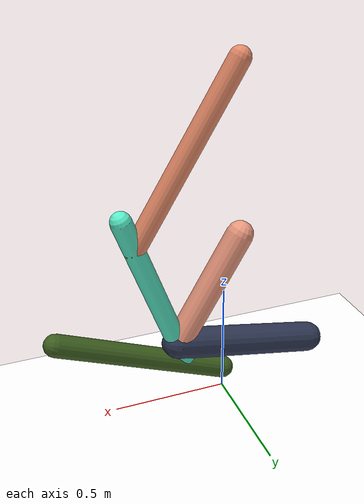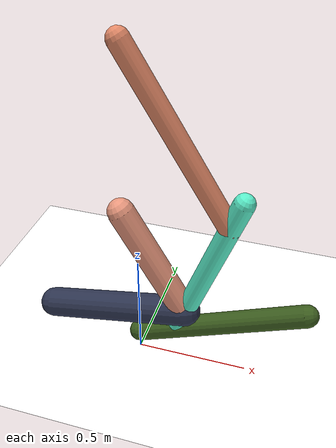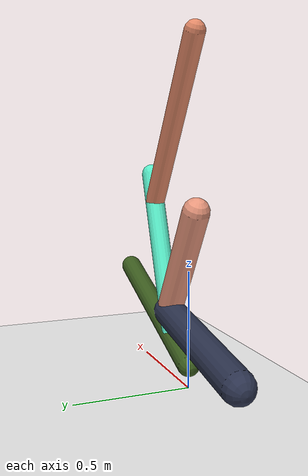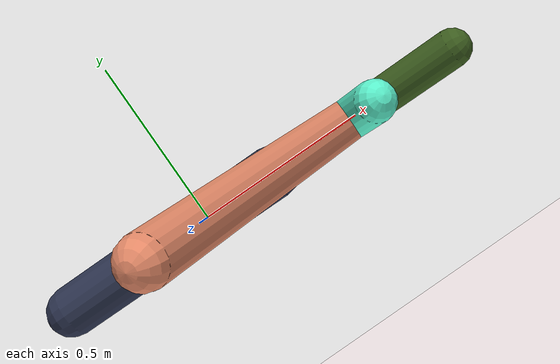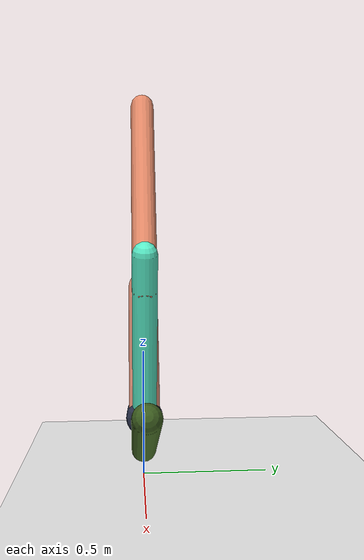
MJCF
<mujoco model="morphology">
  <option timestep="0.01"/>
  <default>
    <default class="/"/>
    <default class="0/"/>
    <default class="0/1/"/>
    <default class="0/1/2/"/>
    <default class="0/1/2/3/"/>
    <default class="0/1/4/"/>
  </default>
  <asset>
    <texture name="texplane" type="2d" builtin="checker" rgb1="0.10000000000000001 0.20000000000000001 0.29999999999999999" rgb2="0.20000000000000001 0.29999999999999999 0.40000000000000002" width="300" height="300"/>
    <material name="MatPlane" class="/" texture="texplane" texrepeat="20 20" specular="1" shininess="1" reflectance="0.5"/>
  </asset>
  <worldbody>
    <light name="//unnamed_light_0" class="/" directional="true" pos="0 0 1.5" dir="0 0 -1.3" cutoff="100" exponent="1" diffuse="1 1 1" specular="0.10000000000000001 0.10000000000000001 0.10000000000000001"/>
    <geom name="ground" class="/" type="plane" size="15 15 0.5" material="MatPlane" rgba="1 1 1 1"/>
    <site name="body" class="/" size="9.9999999999999995e-07 9.9999999999999995e-07 9.9999999999999995e-07" pos="0 0 0.10000000000000001"/>
    <body pos="0 0 0.10000000000000001" name="0/">
      <joint name="0/rootx/" class="/" type="slide" axis="1 0 0" limited="false" stiffness="0" armature="0" damping="0"/>
      <joint name="0/rootz/" class="/" type="slide" axis="0 0 1" limited="false" stiffness="0" armature="0" damping="0"/>
      <joint name="0/rooty/" class="/" type="hinge" axis="0 1 0" limited="false" stiffness="0" armature="0" damping="0"/>
      <geom name="0/geom" class="0/" type="capsule" contype="1" conaffinity="1" condim="3" size="0.048961288148170169" rgba="0.2386821834035644 0.36781776845260827 0.12222439737540358 1" friction="0.59999999999999998 0.10000000000000001 0.10000000000000001" fromto="0 0 0 0.73623177112567273 0 0.29961522042288125"/>
      <site name="0/end0" class="0/" size="0.0050000000000000001" pos="0.73623177112567273 0 0.29961522042288125"/>
      <site name="0/attach1" class="0/" size="9.9999999999999995e-07 9.9999999999999995e-07 9.9999999999999995e-07" pos="0.17274499601320933 0 0.070299913814250048"/>
      <body pos="0.17274499601320933 0 0.070299913814250048" name="0/1/">
        <joint name="0/1/joint/" class="0/" type="hinge" axis="0 1 0" limited="true" range="-33.513489263625388 33.513489263625388"/>
        <geom name="0/1/geom" class="0/1/" type="capsule" contype="1" conaffinity="1" condim="3" size="0.044734156916989481" rgba="0.3551852535629576 0.94726971106328006 0.8019544495745986 1" friction="0.59999999999999998 0.10000000000000001 0.10000000000000001" fromto="0 0 0 0.26555832629105103 0 0.7253737356862533"/>
        <site name="0/1/end1" class="0/1/" size="0.0050000000000000001" pos="0.26555832629105103 0 0.7253737356862533"/>
        <site name="0/1/attach2" class="0/1/" size="9.9999999999999995e-07 9.9999999999999995e-07 9.9999999999999995e-07" pos="0.040781814702636539 0 0.1113957061413853"/>
        <body pos="0.040781814702636539 0 0.1113957061413853" name="0/1/2/">
          <joint name="0/1/2/joint/" class="0/1/" type="hinge" axis="0 1 0" limited="true" range="-65.398875915526787 65.398875915526787"/>
          <geom name="0/1/2/geom" class="0/1/2/" type="capsule" contype="1" conaffinity="1" condim="3" size="0.068668927516748329" rgba="0.17769480553092043 0.20645109644620274 0.31348821498851931 1" friction="0.59999999999999998 0.10000000000000001 0.10000000000000001" fromto="0 0 0 -0.64017455103220078 0 -0.12029786774712148"/>
          <site name="0/1/2/end2" class="0/1/2/" size="0.0050000000000000001" pos="-0.64017455103220078 0 -0.12029786774712148"/>
          <site name="0/1/2/attach3" class="0/1/2/" size="9.9999999999999995e-07 9.9999999999999995e-07 9.9999999999999995e-07" pos="-0.0013781821603698935 0 -0.00025897995318979847"/>
          <body pos="-0.0013781821603698935 0 -0.00025897995318979847" name="0/1/2/3/">
            <geom name="0/1/2/3/geom" class="0/1/2/3/" type="capsule" contype="1" conaffinity="1" condim="3" size="0.058116926143325628" rgba="0.92821940996193675 0.60363650842823013 0.49747137803110442 1" friction="0.59999999999999998 0.10000000000000001 0.10000000000000001" fromto="0 0 0 -0.27830151989812435 0 0.47706663704374952"/>
            <site name="0/1/2/3/end3" class="0/1/2/3/" size="0.0050000000000000001" pos="-0.27830151989812435 0 0.47706663704374952"/>
          </body>
        </body>
        <site name="0/1/attach4" class="0/1/" size="9.9999999999999995e-07 9.9999999999999995e-07 9.9999999999999995e-07" pos="0.21785203751458321 0 0.5950637981714838"/>
        <body pos="0.21785203751458321 0 0.5950637981714838" name="0/1/4/">
          <joint name="0/1/4/joint/" class="0/1/" type="hinge" axis="0 1 0" limited="true" range="-47.099632698921496 47.099632698921496"/>
          <geom name="0/1/4/geom" class="0/1/4/" type="capsule" contype="1" conaffinity="1" condim="3" size="0.044923879247024373" rgba="0.90477432691652238 0.54617515247863302 0.41160352219381557 1" friction="0.59999999999999998 0.10000000000000001 0.10000000000000001" fromto="0 0 0 -0.43289504458892664 0 0.71389299860151656"/>
          <site name="0/1/4/end4" class="0/1/4/" size="0.0050000000000000001" pos="-0.43289504458892664 0 0.71389299860151656"/>
        </body>
      </body>
      <camera name="0/side" class="0/" mode="trackcom" pos="0.40000000000000002 -4 0.20000000000000001" quat="0.70699999999999996 0.70699999999999996 0 0"/>
    </body>
  </worldbody>
  <actuator>
    <motor name="0/1/motor" class="0/1/" ctrllimited="true" ctrlrange="-1 1" gear="54" joint="0/1/joint/"/>
    <motor name="0/1/2/motor" class="0/1/2/" ctrllimited="true" ctrlrange="-1 1" gear="68" joint="0/1/2/joint/"/>
    <motor name="0/1/4/motor" class="0/1/4/" ctrllimited="true" ctrlrange="-1 1" gear="82" joint="0/1/4/joint/"/>
  </actuator>
  <sensor>
    <subtreelinvel name="velocity" body="0/"/>
  </sensor>
</mujoco>
